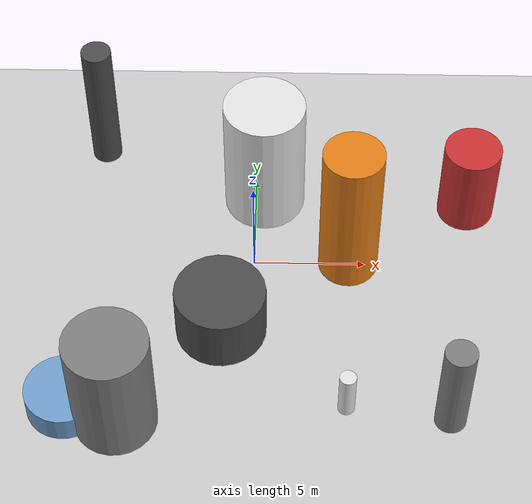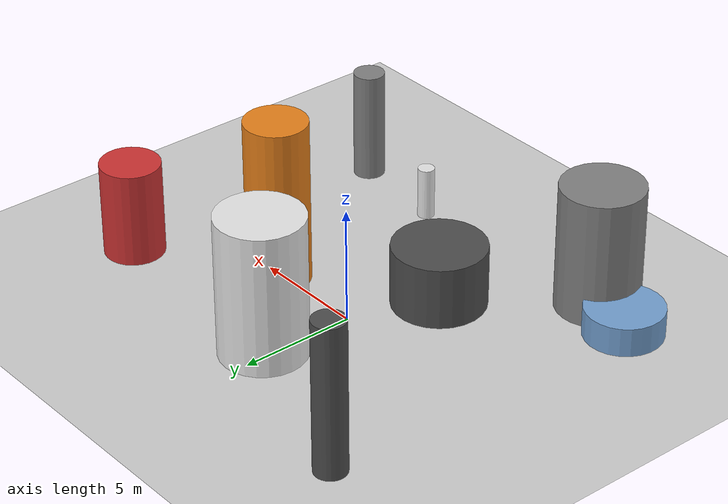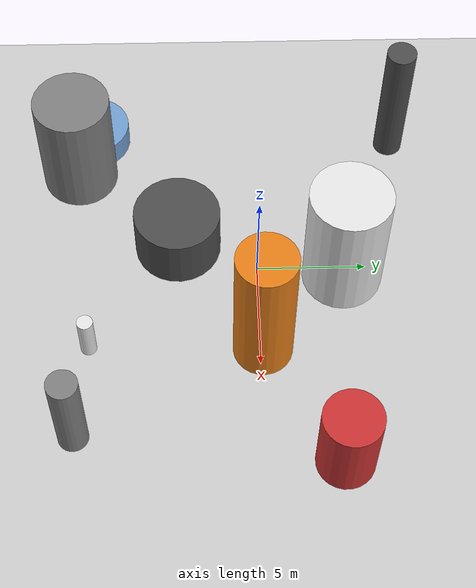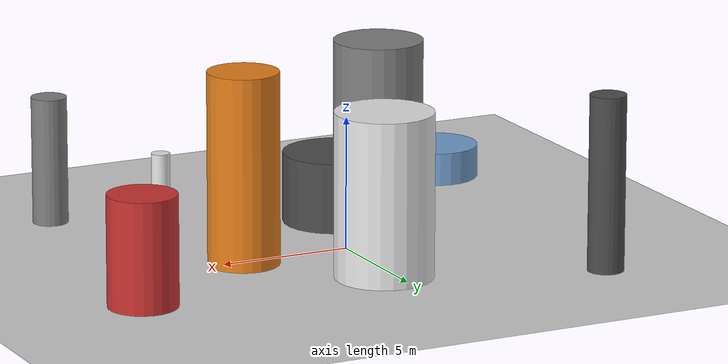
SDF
<?xml version='1.0'?>
<sdf version='1.6'>
  <world name='default'>
    <!-- Sun light -->
    <light name='sun' type='directional'>
      <cast_shadows>1</cast_shadows>
      <pose>0 0 10 0 0 0</pose>
      <diffuse>0.8 0.8 0.8 1</diffuse>
      <specular>0.2 0.2 0.2 1</specular>
      <attenuation>
        <range>1000</range>
        <constant>0.9</constant>
        <linear>0.01</linear>
        <quadratic>0.001</quadratic>
      </attenuation>
      <direction>-0.5 0.1 -0.9</direction>
    </light>

    <!-- Ground plane -->
    <model name='ground_plane'>
      <static>1</static>
      <link name='link'>
        <collision name='collision'>
          <geometry>
            <plane>
              <normal>0 0 1</normal>
              <size>100 100</size>
            </plane>
          </geometry>
          <surface>
            <contact>
              <collide_bitmask>65535</collide_bitmask>
              <ode/>
            </contact>
            <friction>
              <ode>
                <mu>100</mu>
                <mu2>50</mu2>
              </ode>
              <torsional><ode/></torsional>
            </friction>
            <bounce/>
          </surface>
          <max_contacts>10</max_contacts>
        </collision>
        <visual name='visual'>
          <cast_shadows>0</cast_shadows>
          <geometry>
            <plane>
              <normal>0 0 1</normal>
              <size>100 100</size>
            </plane>
          </geometry>
          <material>
            <script>
              <uri>file://media/materials/scripts/gazebo.material</uri>
              <n>Gazebo/Grey</n>
            </script>
          </material>
        </visual>
      </link>
    </model>

    <!-- Environment -->
    <magnetic_field>6e-06 2.3e-05 -4.2e-05</magnetic_field>
    <atmosphere type='adiabatic'/>
    <physics name='default_physics' default='0' type='ode'>
      <gravity>0 0 -9.8</gravity>
      <max_step_size>0.004</max_step_size>
      <real_time_factor>1</real_time_factor>
      <real_time_update_rate>250</real_time_update_rate>
    </physics>
    <scene>
      <ambient>0.4 0.4 0.4 1</ambient>
      <background>0.7 0.7 0.7 1</background>
      <shadows>1</shadows>
    </scene>
    <wind/>
    <spherical_coordinates>
      <surface_model>EARTH_WGS84</surface_model>
      <latitude_deg>0</latitude_deg>
      <longitude_deg>0</longitude_deg>
      <elevation>0</elevation>
      <heading_deg>0</heading_deg>
    </spherical_coordinates>

    <!-- ============ OBSTACLES (9) ============ -->
    <model name='obs_00'>
      <static>1</static>
      <link name='link'>
        <visual name='visual'>
          <geometry>
            <cylinder>
              <radius>0.3607</radius>
              <length>2.2866</length>
            </cylinder>
          </geometry>
          <material>
            <script>
              <n>Gazebo/White</n>
              <uri>file://media/materials/scripts/gazebo.material</uri>
            </script>
            <ambient>0.9 0.9 0.9 1</ambient>
          </material>
        </visual>
        <collision name='collision'>
          <geometry>
            <cylinder>
              <radius>0.3607</radius>
              <length>2.2866</length>
            </cylinder>
          </geometry>
          <max_contacts>10</max_contacts>
          <surface>
            <contact><ode/></contact>
            <bounce/>
            <friction>
              <ode><mu>1</mu><mu2>1</mu2></ode>
              <torsional><ode/></torsional>
            </friction>
          </surface>
        </collision>
      </link>
      <pose>4.0629 -7.6570 1.1433 0 0 0.6628</pose>
    </model>

    <model name='obs_01'>
      <static>1</static>
      <link name='link'>
        <visual name='visual'>
          <geometry>
            <cylinder>
              <radius>0.6742</radius>
              <length>4.8742</length>
            </cylinder>
          </geometry>
          <material>
            <script>
              <n>Gazebo/Grey</n>
              <uri>file://media/materials/scripts/gazebo.material</uri>
            </script>
            <ambient>0.5 0.5 0.5 1</ambient>
          </material>
        </visual>
        <collision name='collision'>
          <geometry>
            <cylinder>
              <radius>0.6742</radius>
              <length>4.8742</length>
            </cylinder>
          </geometry>
          <max_contacts>10</max_contacts>
          <surface>
            <contact><ode/></contact>
            <bounce/>
            <friction>
              <ode><mu>1</mu><mu2>1</mu2></ode>
              <torsional><ode/></torsional>
            </friction>
          </surface>
        </collision>
      </link>
      <pose>8.4092 -8.1534 2.4371 0 0 0.3634</pose>
    </model>

    <model name='obs_02'>
      <static>1</static>
      <link name='link'>
        <visual name='visual'>
          <geometry>
            <cylinder>
              <radius>1.3384</radius>
              <length>7.2505</length>
            </cylinder>
          </geometry>
          <material>
            <script>
              <n>Gazebo/Orange</n>
              <uri>file://media/materials/scripts/gazebo.material</uri>
            </script>
            <ambient>0.9 0.5 0.1 1</ambient>
          </material>
        </visual>
        <collision name='collision'>
          <geometry>
            <cylinder>
              <radius>1.3384</radius>
              <length>7.2505</length>
            </cylinder>
          </geometry>
          <max_contacts>10</max_contacts>
          <surface>
            <contact><ode/></contact>
            <bounce/>
            <friction>
              <ode><mu>1</mu><mu2>1</mu2></ode>
              <torsional><ode/></torsional>
            </friction>
          </surface>
        </collision>
      </link>
      <pose>4.2315 0.1090 3.6253 0 0 0.3269</pose>
    </model>

    <model name='obs_03'>
      <static>1</static>
      <link name='link'>
        <visual name='visual'>
          <geometry>
            <cylinder>
              <radius>1.2904</radius>
              <length>4.1418</length>
            </cylinder>
          </geometry>
          <material>
            <script>
              <n>Gazebo/Red</n>
              <uri>file://media/materials/scripts/gazebo.material</uri>
            </script>
            <ambient>0.8 0.2 0.2 1</ambient>
          </material>
        </visual>
        <collision name='collision'>
          <geometry>
            <cylinder>
              <radius>1.2904</radius>
              <length>4.1418</length>
            </cylinder>
          </geometry>
          <max_contacts>10</max_contacts>
          <surface>
            <contact><ode/></contact>
            <bounce/>
            <friction>
              <ode><mu>1</mu><mu2>1</mu2></ode>
              <torsional><ode/></torsional>
            </friction>
          </surface>
        </collision>
      </link>
      <pose>9.7439 3.4042 2.0709 0 0 3.0108</pose>
    </model>

    <model name='obs_04'>
      <static>1</static>
      <link name='link'>
        <visual name='visual'>
          <geometry>
            <cylinder>
              <radius>0.6809</radius>
              <length>6.6076</length>
            </cylinder>
          </geometry>
          <material>
            <script>
              <n>Gazebo/DarkGrey</n>
              <uri>file://media/materials/scripts/gazebo.material</uri>
            </script>
            <ambient>0.3 0.3 0.3 1</ambient>
          </material>
        </visual>
        <collision name='collision'>
          <geometry>
            <cylinder>
              <radius>0.6809</radius>
              <length>6.6076</length>
            </cylinder>
          </geometry>
          <max_contacts>10</max_contacts>
          <surface>
            <contact><ode/></contact>
            <bounce/>
            <friction>
              <ode><mu>1</mu><mu2>1</mu2></ode>
              <torsional><ode/></torsional>
            </friction>
          </surface>
        </collision>
      </link>
      <pose>-7.2342 6.7098 3.3038 0 0 1.4468</pose>
    </model>

    <model name='obs_05'>
      <static>1</static>
      <link name='link'>
        <visual name='visual'>
          <geometry>
            <cylinder>
              <radius>1.6653</radius>
              <length>1.2632</length>
            </cylinder>
          </geometry>
          <material>
            <script>
              <n>Gazebo/Blue</n>
              <uri>file://media/materials/scripts/gazebo.material</uri>
            </script>
            <ambient>0.447 0.624 0.812 1</ambient>
          </material>
        </visual>
        <collision name='collision'>
          <geometry>
            <cylinder>
              <radius>1.6653</radius>
              <length>1.2632</length>
            </cylinder>
          </geometry>
          <max_contacts>10</max_contacts>
          <surface>
            <contact><ode/></contact>
            <bounce/>
            <friction>
              <ode><mu>1</mu><mu2>1</mu2></ode>
              <torsional><ode/></torsional>
            </friction>
          </surface>
        </collision>
      </link>
      <pose>-7.7325 -7.7350 0.6316 0 0 0.9596</pose>
    </model>

    <model name='obs_06'>
      <static>1</static>
      <link name='link'>
        <visual name='visual'>
          <geometry>
            <cylinder>
              <radius>1.9866</radius>
              <length>2.6852</length>
            </cylinder>
          </geometry>
          <material>
            <script>
              <n>Gazebo/DarkGrey</n>
              <uri>file://media/materials/scripts/gazebo.material</uri>
            </script>
            <ambient>0.3 0.3 0.3 1</ambient>
          </material>
        </visual>
        <collision name='collision'>
          <geometry>
            <cylinder>
              <radius>1.9866</radius>
              <length>2.6852</length>
            </cylinder>
          </geometry>
          <max_contacts>10</max_contacts>
          <surface>
            <contact><ode/></contact>
            <bounce/>
            <friction>
              <ode><mu>1</mu><mu2>1</mu2></ode>
              <torsional><ode/></torsional>
            </friction>
          </surface>
        </collision>
      </link>
      <pose>-1.3507 -3.6613 1.3426 0 0 2.1714</pose>
    </model>

    <model name='obs_07'>
      <static>1</static>
      <link name='link'>
        <visual name='visual'>
          <geometry>
            <cylinder>
              <radius>1.7655</radius>
              <length>5.5349</length>
            </cylinder>
          </geometry>
          <material>
            <script>
              <n>Gazebo/Grey</n>
              <uri>file://media/materials/scripts/gazebo.material</uri>
            </script>
            <ambient>0.5 0.5 0.5 1</ambient>
          </material>
        </visual>
        <collision name='collision'>
          <geometry>
            <cylinder>
              <radius>1.7655</radius>
              <length>5.5349</length>
            </cylinder>
          </geometry>
          <max_contacts>10</max_contacts>
          <surface>
            <contact><ode/></contact>
            <bounce/>
            <friction>
              <ode><mu>1</mu><mu2>1</mu2></ode>
              <torsional><ode/></torsional>
            </friction>
          </surface>
        </collision>
      </link>
      <pose>-5.5691 -8.3908 2.7674 0 0 2.0178</pose>
    </model>

    <model name='obs_08'>
      <static>1</static>
      <link name='link'>
        <visual name='visual'>
          <geometry>
            <cylinder>
              <radius>1.8387</radius>
              <length>6.1885</length>
            </cylinder>
          </geometry>
          <material>
            <script>
              <n>Gazebo/White</n>
              <uri>file://media/materials/scripts/gazebo.material</uri>
            </script>
            <ambient>0.9 0.9 0.9 1</ambient>
          </material>
        </visual>
        <collision name='collision'>
          <geometry>
            <cylinder>
              <radius>1.8387</radius>
              <length>6.1885</length>
            </cylinder>
          </geometry>
          <max_contacts>10</max_contacts>
          <surface>
            <contact><ode/></contact>
            <bounce/>
            <friction>
              <ode><mu>1</mu><mu2>1</mu2></ode>
              <torsional><ode/></torsional>
            </friction>
          </surface>
        </collision>
      </link>
      <pose>0.3953 3.8883 3.0942 0 0 0.7708</pose>
    </model>

    <!-- GUI camera -->
    <gui fullscreen='0'>
      <camera name='user_camera'>
        <pose>-15 0 18 0 0.85 0.15</pose>
        <view_controller>orbit</view_controller>
        <projection_type>perspective</projection_type>
      </camera>
    </gui>
  </world>
</sdf>
